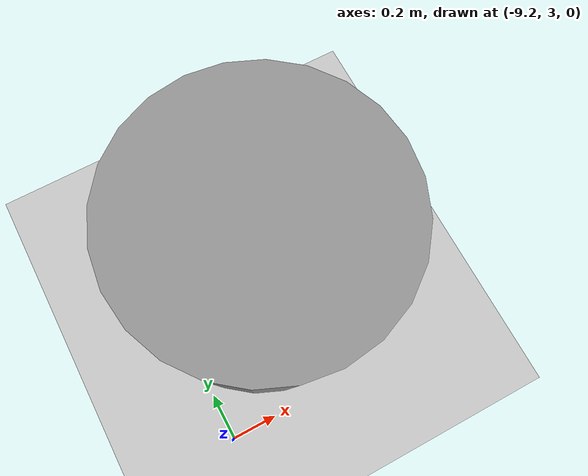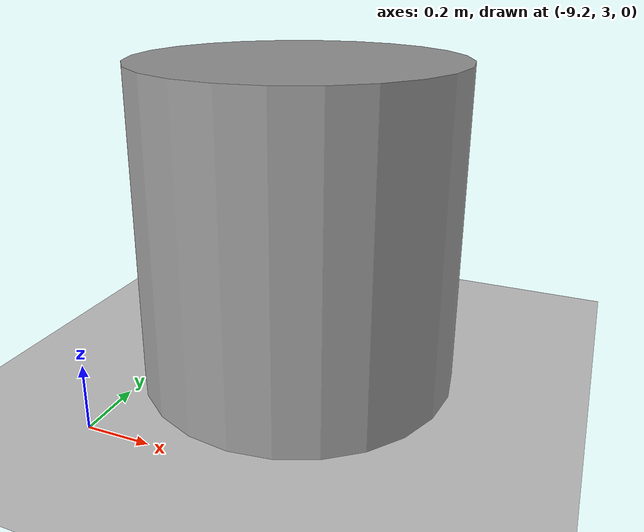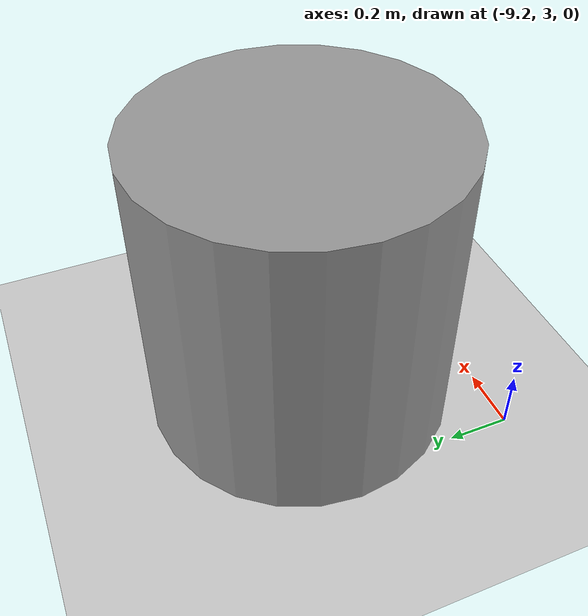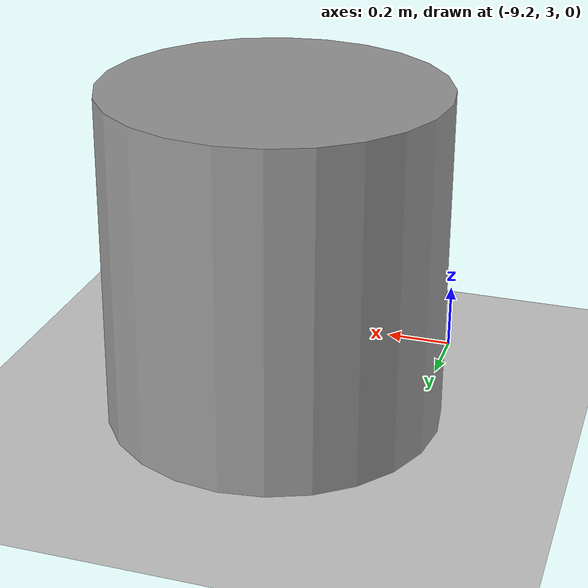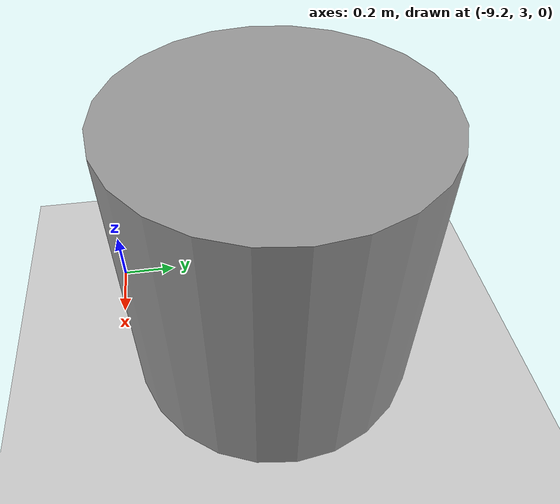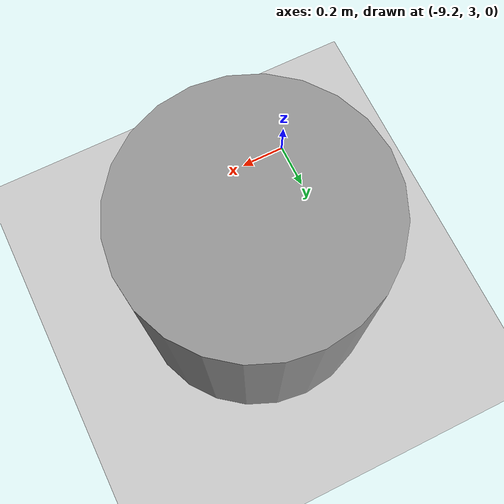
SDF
<sdf version="1.6">
 <world name="default">
  <light name="sun" type="directional">
   <pose>0 0 10 0 -0 0</pose>
   <diffuse>0.8 0.8 0.8 1</diffuse>
   <specular>0.2 0.2 0.2 1</specular>
   <attenuation>
    <range>1000</range>
    <constant>0.9</constant>
    <linear>0.01</linear>
    <quadratic>0.001</quadratic>
   </attenuation>
   <direction>-0.5 0.1 -0.9</direction>
  </light>
  <gravity>0 0 -9.8</gravity>
  <magnetic_field>6e-06 2.3e-05 -4.2e-05</magnetic_field>
  <atmosphere type="adiabatic"/>
  <physics name="default_physics" default="0" type="ode">
   <max_step_size>0.001</max_step_size>
   <real_time_factor>1</real_time_factor>
   <real_time_update_rate>1000</real_time_update_rate>
  </physics>
  <scene><ambient>0.4 0.4 0.4 1</ambient><background>0.7 0.7 0.7 1</background><shadows>1</shadows></scene>
  <spherical_coordinates>
   <surface_model>EARTH_WGS84</surface_model>
   <latitude_deg>0</latitude_deg>
   <longitude_deg>0</longitude_deg>
   <elevation>0</elevation>
   <heading_deg>0</heading_deg>
  </spherical_coordinates>
  <model name="my_ground_plane">
   <static>1</static>
   <link name="link">
    <collision name="collision">
     <geometry><plane><normal>0 0 1</normal><size>100 100</size></plane></geometry>
     <surface><friction><ode><mu>100</mu><mu2>50</mu2></ode></friction></surface>
    </collision>
    <visual name="visual">
     <cast_shadows>0</cast_shadows>
     <geometry><plane><normal>0 0 1</normal><size>25 25</size></plane></geometry>
     <material>
      <script>
       <uri>model://my_ground_plane/materials/scripts</uri>
       <uri>model://my_ground_plane/materials/textures</uri>
       <name>MyGroundPlane/Image</name>
      </script>
     </material>
    </visual>
   </link>
   <pose>-0.492392 0.861814 0 0 -0 0</pose>
  </model>
  <model name="unit_cylinder">
   <pose>-8.78543 3.55895 0.499997 3e-06 4e-06 -0</pose>
   <link name="link">
    <inertial>
     <mass>100</mass>
     <inertia><ixx>100</ixx><ixy>0</ixy><ixz>0</ixz><iyy>100</iyy><iyz>0</iyz><izz>100</izz></inertia>
    </inertial>
    <collision name="collision">
     <geometry><cylinder><radius>0.5</radius><length>1</length></cylinder></geometry>
    </collision>
    <visual name="visual">
     <geometry><cylinder><radius>0.5</radius><length>1</length></cylinder></geometry>
     <material>
      <script><name>Gazebo/Grey</name><uri>file://media/materials/scripts/gazebo.material</uri></script>
     </material>
    </visual>
   </link>
   <plugin name="object_controller" filename="libgazebo_ros_planar_move.so">
    <commandTopic>/marker/cmd_vel</commandTopic>
    <odometryTopic>/marker/odom</odometryTopic>
    <odometryFrame>/marker/odom</odometryFrame>
    <odometryRate>20.0</odometryRate>
    <robotBaseFrame>base_footprint</robotBaseFrame>
   </plugin>
  </model>
 </world>
</sdf>
